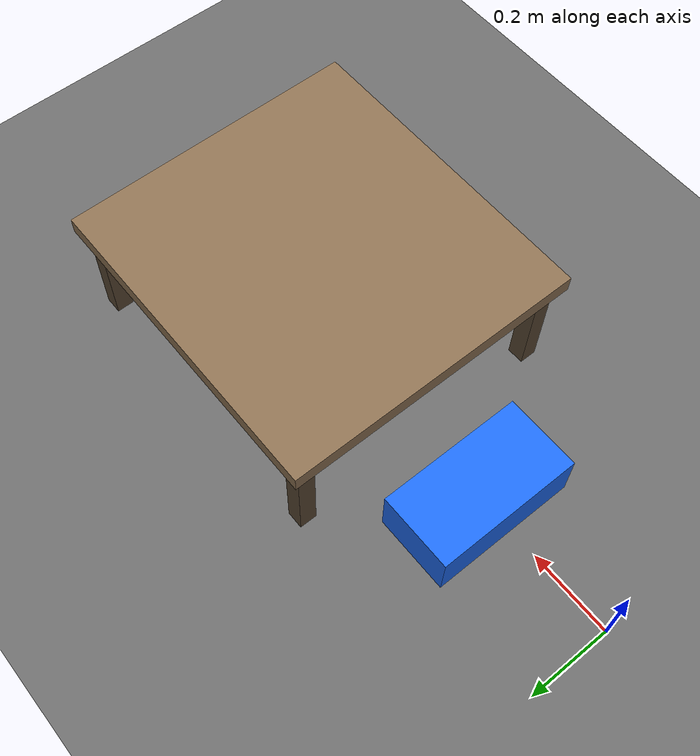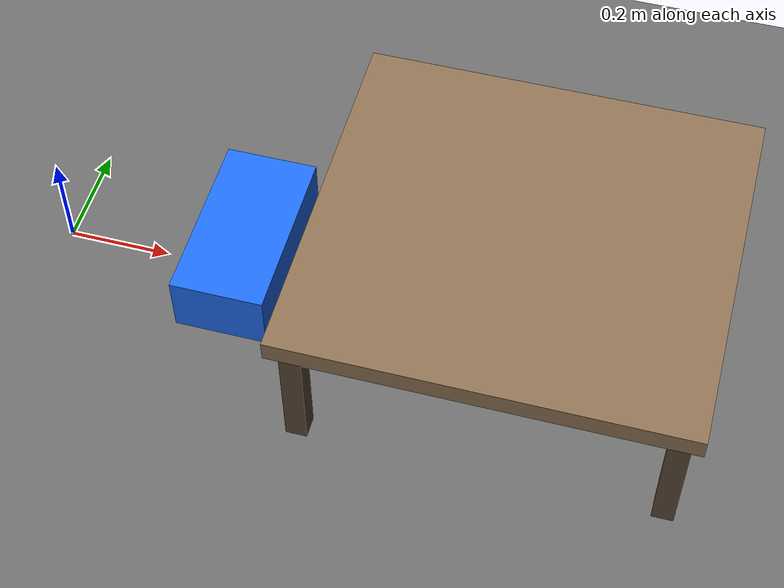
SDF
<?xml version="1.0" ?>
<sdf version="1.6">
  <world name="dual_arm_carry_world">
    <gravity>0 0 -9.81</gravity>

    <gui fullscreen="0">
      <camera name="user_camera">
        <pose>1.45 -1.25 0.85 0 0.48 2.35</pose>
        <view_controller>orbit</view_controller>
      </camera>
    </gui>

    <plugin name="gazebo_ros_state" filename="libgazebo_ros_state.so">
      <ros>
        <namespace>/gazebo</namespace>
      </ros>
      <update_rate>50.0</update_rate>
    </plugin>

    <light name="sun" type="directional">
      <cast_shadows>true</cast_shadows>
      <pose>0 0 5 0 0 0</pose>
      <diffuse>0.8 0.8 0.8 1</diffuse>
      <specular>0.2 0.2 0.2 1</specular>
      <attenuation>
        <range>1000</range>
        <constant>0.9</constant>
        <linear>0.01</linear>
        <quadratic>0.001</quadratic>
      </attenuation>
      <direction>-0.5 0.1 -0.9</direction>
    </light>

    <model name="ground_plane">
      <static>true</static>
      <link name="link">
        <collision name="collision">
          <geometry>
            <plane>
              <normal>0 0 1</normal>
              <size>4 4</size>
            </plane>
          </geometry>
        </collision>
        <visual name="visual">
          <geometry>
            <plane>
              <normal>0 0 1</normal>
              <size>4 4</size>
            </plane>
          </geometry>
          <material>
            <ambient>0.42 0.42 0.42 1</ambient>
            <diffuse>0.42 0.42 0.42 1</diffuse>
          </material>
        </visual>
      </link>
    </model>

    <model name="work_table">
      <static>true</static>
      <pose>0.90 0 0 0 0 0</pose>
      <link name="table_link">
        <collision name="table_top_collision">
          <pose>0 0 0.28 0 0 0</pose>
          <geometry>
            <box>
              <size>0.75 0.70 0.04</size>
            </box>
          </geometry>
        </collision>
        <visual name="table_top_visual">
          <pose>0 0 0.28 0 0 0</pose>
          <geometry>
            <box>
              <size>0.75 0.70 0.04</size>
            </box>
          </geometry>
          <material>
            <ambient>0.55 0.44 0.32 1</ambient>
            <diffuse>0.55 0.44 0.32 1</diffuse>
          </material>
        </visual>
        <collision name="front_left_leg_collision">
          <pose>-0.335 -0.31 0.13 0 0 0</pose>
          <geometry>
            <box>
              <size>0.04 0.04 0.26</size>
            </box>
          </geometry>
        </collision>
        <visual name="front_left_leg_visual">
          <pose>-0.335 -0.31 0.13 0 0 0</pose>
          <geometry>
            <box>
              <size>0.04 0.04 0.26</size>
            </box>
          </geometry>
          <material>
            <ambient>0.35 0.28 0.20 1</ambient>
            <diffuse>0.35 0.28 0.20 1</diffuse>
          </material>
        </visual>
        <collision name="front_right_leg_collision">
          <pose>-0.335 0.31 0.13 0 0 0</pose>
          <geometry>
            <box>
              <size>0.04 0.04 0.26</size>
            </box>
          </geometry>
        </collision>
        <visual name="front_right_leg_visual">
          <pose>-0.335 0.31 0.13 0 0 0</pose>
          <geometry>
            <box>
              <size>0.04 0.04 0.26</size>
            </box>
          </geometry>
          <material>
            <ambient>0.35 0.28 0.20 1</ambient>
            <diffuse>0.35 0.28 0.20 1</diffuse>
          </material>
        </visual>
        <collision name="back_left_leg_collision">
          <pose>0.335 -0.31 0.13 0 0 0</pose>
          <geometry>
            <box>
              <size>0.04 0.04 0.26</size>
            </box>
          </geometry>
        </collision>
        <visual name="back_left_leg_visual">
          <pose>0.335 -0.31 0.13 0 0 0</pose>
          <geometry>
            <box>
              <size>0.04 0.04 0.26</size>
            </box>
          </geometry>
          <material>
            <ambient>0.35 0.28 0.20 1</ambient>
            <diffuse>0.35 0.28 0.20 1</diffuse>
          </material>
        </visual>
        <collision name="back_right_leg_collision">
          <pose>0.335 0.31 0.13 0 0 0</pose>
          <geometry>
            <box>
              <size>0.04 0.04 0.26</size>
            </box>
          </geometry>
        </collision>
        <visual name="back_right_leg_visual">
          <pose>0.335 0.31 0.13 0 0 0</pose>
          <geometry>
            <box>
              <size>0.04 0.04 0.26</size>
            </box>
          </geometry>
          <material>
            <ambient>0.35 0.28 0.20 1</ambient>
            <diffuse>0.35 0.28 0.20 1</diffuse>
          </material>
        </visual>
      </link>
    </model>

    <model name="cargo_box">
      <pose>0.36 0.02 0.06 0 0 0</pose>
      <link name="link">
        <inertial>
          <mass>1.0</mass>
          <inertia>
            <ixx>0.0111</ixx>
            <iyy>0.0039</iyy>
            <izz>0.0126</izz>
            <ixy>0</ixy>
            <ixz>0</ixz>
            <iyz>0</iyz>
          </inertia>
        </inertial>
        <collision name="collision">
          <geometry>
            <box>
              <size>0.18 0.345 0.12</size>
            </box>
          </geometry>
          <surface>
            <friction>
              <ode>
                <mu>0.8</mu>
                <mu2>0.8</mu2>
              </ode>
            </friction>
          </surface>
        </collision>
        <visual name="visual">
          <geometry>
            <box>
              <size>0.18 0.345 0.12</size>
            </box>
          </geometry>
          <material>
            <ambient>0.12 0.42 0.95 1</ambient>
            <diffuse>0.12 0.42 0.95 1</diffuse>
          </material>
        </visual>
      </link>
    </model>
  </world>
</sdf>
